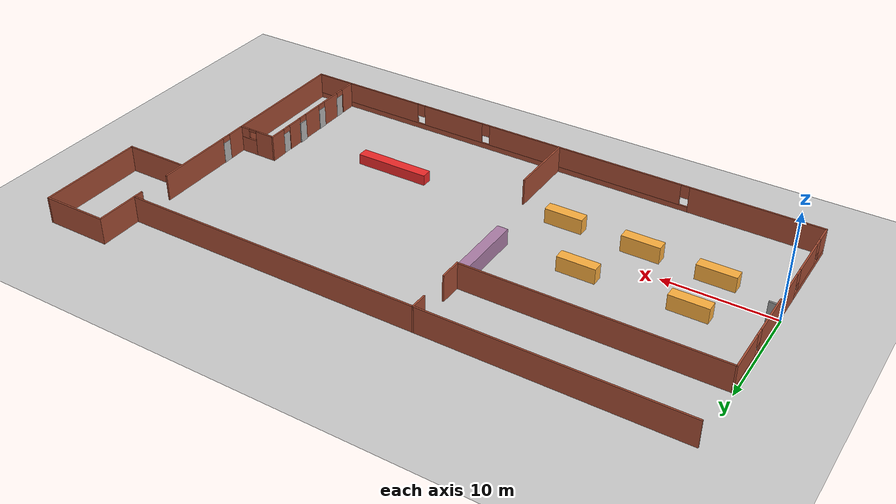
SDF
<sdf version="1.7">
 <world name="default">
  <light name="sun" type="directional">
   <pose>0 0 10 0 -0 0</pose>
   <diffuse>0.8 0.8 0.8 1</diffuse>
   <specular>0.2 0.2 0.2 1</specular>
   <attenuation>
    <range>1000</range>
    <constant>0.9</constant>
    <linear>0.01</linear>
    <quadratic>0.001</quadratic>
   </attenuation>
   <direction>-0.5 0.1 -0.9</direction>
   <spot><inner_angle>0</inner_angle><outer_angle>0</outer_angle><falloff>0</falloff></spot>
  </light>
  <model name="ground_plane">
   <static>1</static>
   <link name="link">
    <collision name="collision">
     <geometry><plane><normal>0 0 1</normal><size>100 100</size></plane></geometry>
     <surface>
      <contact><collide_bitmask>65535</collide_bitmask></contact>
      <friction><ode><mu>100</mu><mu2>50</mu2></ode></friction>
     </surface>
    </collision>
    <visual name="visual">
     <cast_shadows>0</cast_shadows>
     <geometry><plane><normal>0 0 1</normal><size>100 100</size></plane></geometry>
     <material>
      <script><uri>file://media/materials/scripts/gazebo.material</uri><name>Gazebo/Grey</name></script>
     </material>
    </visual>
   </link>
  </model>
  <gravity>0 0 -9.8</gravity>
  <magnetic_field>6e-06 2.3e-05 -4.2e-05</magnetic_field>
  <atmosphere type="adiabatic"/>
  <physics type="ode">
   <max_step_size>0.001</max_step_size>
   <real_time_factor>1</real_time_factor>
   <real_time_update_rate>1000</real_time_update_rate>
  </physics>
  <scene><ambient>0.4 0.4 0.4 1</ambient><background>0.7 0.7 0.7 1</background><shadows>1</shadows></scene>
  <spherical_coordinates>
   <surface_model>EARTH_WGS84</surface_model>
   <latitude_deg>0</latitude_deg>
   <longitude_deg>0</longitude_deg>
   <elevation>0</elevation>
   <heading_deg>0</heading_deg>
  </spherical_coordinates>
  <model name="world">
   <pose>28.6416 4.93004 0 0 -0 0</pose>
   <link name="Door_6">
    <collision name="Door_6_Collision">
     <geometry><box><size>0.9 0.17 2</size></box></geometry>
     <pose>0 0 1 0 -0 0</pose>
    </collision>
    <visual name="Door_6_Visual">
     <pose>0 0 1 0 -0 0</pose>
     <geometry><box><size>0.9 0.17 2</size></box></geometry>
     <material>
      <script><uri>file://media/materials/scripts/gazebo.material</uri><name>Gazebo/Grey</name></script>
     </material>
    </visual>
    <pose>-28.0935 -4.22704 0 0 -0 0</pose>
   </link>
   <link name="Wall_11">
    <pose>-28.5 0.25 0 0 -0 1.5708</pose>
    <visual name="Wall_11_Visual_0">
     <pose>-2.44406 0 1.25 0 -0 0</pose>
     <geometry><box><size>4.26189 0.15 2.5</size></box></geometry>
     <material>
      <script><uri>file://media/materials/scripts/gazebo.material</uri><name>Gazebo/Bricks</name></script>
      <ambient>1 1 1 1</ambient>
     </material>
     <meta><layer>0</layer></meta>
    </visual>
    <collision name="Wall_11_Collision_0">
     <geometry><box><size>4.26189 0.15 2.5</size></box></geometry>
     <pose>-2.44406 0 1.25 0 -0 0</pose>
    </collision>
    <visual name="Wall_11_Visual_1">
     <pose>2.13095 0 0.25 0 -0 0</pose>
     <geometry><box><size>4.88811 0.15 0.5</size></box></geometry>
     <material>
      <script><uri>file://media/materials/scripts/gazebo.material</uri><name>Gazebo/Bricks</name></script>
      <ambient>1 1 1 1</ambient>
     </material>
     <meta><layer>0</layer></meta>
    </visual>
    <collision name="Wall_11_Collision_1">
     <geometry><box><size>4.88811 0.15 0.5</size></box></geometry>
     <pose>2.13095 0 0.25 0 -0 0</pose>
    </collision>
    <visual name="Wall_11_Visual_2">
     <pose>2.53095 0 1.5 0 -0 0</pose>
     <geometry><box><size>4.08811 0.15 2</size></box></geometry>
     <material>
      <script><uri>file://media/materials/scripts/gazebo.material</uri><name>Gazebo/Bricks</name></script>
      <ambient>1 1 1 1</ambient>
     </material>
     <meta><layer>0</layer></meta>
    </visual>
    <collision name="Wall_11_Collision_2">
     <geometry><box><size>4.08811 0.15 2</size></box></geometry>
     <pose>2.53095 0 1.5 0 -0 0</pose>
    </collision>
    <visual name="Wall_11_Visual_3">
     <pose>0.086889 0 1.9 0 -0 0</pose>
     <geometry><box><size>0.8 0.15 1.2</size></box></geometry>
     <material>
      <script><uri>file://media/materials/scripts/gazebo.material</uri><name>Gazebo/Bricks</name></script>
      <ambient>1 1 1 1</ambient>
     </material>
     <meta><layer>0</layer></meta>
    </visual>
    <collision name="Wall_11_Collision_3">
     <geometry><box><size>0.8 0.15 1.2</size></box></geometry>
     <pose>0.086889 0 1.9 0 -0 0</pose>
    </collision>
   </link>
   <link name="Wall_13">
    <pose>-3 -15.25 0 0 -0 0</pose>
    <visual name="Wall_13_Visual_0">
     <pose>-19.6123 0 1.25 0 -0 0</pose>
     <geometry><box><size>11.9253 0.15 2.5</size></box></geometry>
     <material>
      <script><uri>file://media/materials/scripts/gazebo.material</uri><name>Gazebo/Bricks</name></script>
      <ambient>1 1 1 1</ambient>
     </material>
     <meta><layer>0</layer></meta>
    </visual>
    <collision name="Wall_13_Collision_0">
     <geometry><box><size>11.9253 0.15 2.5</size></box></geometry>
     <pose>-19.6123 0 1.25 0 -0 0</pose>
    </collision>
    <visual name="Wall_13_Visual_1">
     <pose>5.96266 0 0.25 0 -0 0</pose>
     <geometry><box><size>39.2247 0.15 0.5</size></box></geometry>
     <material>
      <script><uri>file://media/materials/scripts/gazebo.material</uri><name>Gazebo/Bricks</name></script>
      <ambient>1 1 1 1</ambient>
     </material>
     <meta><layer>0</layer></meta>
    </visual>
    <collision name="Wall_13_Collision_1">
     <geometry><box><size>39.2247 0.15 0.5</size></box></geometry>
     <pose>5.96266 0 0.25 0 -0 0</pose>
    </collision>
    <visual name="Wall_13_Visual_2">
     <pose>-3.36472 0 1.5 0 -0 0</pose>
     <geometry><box><size>18.9699 0.15 2</size></box></geometry>
     <material>
      <script><uri>file://media/materials/scripts/gazebo.material</uri><name>Gazebo/Bricks</name></script>
      <ambient>1 1 1 1</ambient>
     </material>
     <meta><layer>0</layer></meta>
    </visual>
    <collision name="Wall_13_Collision_2">
     <geometry><box><size>18.9699 0.15 2</size></box></geometry>
     <pose>-3.36472 0 1.5 0 -0 0</pose>
    </collision>
    <visual name="Wall_13_Visual_3">
     <pose>10.0719 0 1.5 0 -0 0</pose>
     <geometry><box><size>6.30326 0.15 2</size></box></geometry>
     <material>
      <script><uri>file://media/materials/scripts/gazebo.material</uri><name>Gazebo/Bricks</name></script>
      <ambient>1 1 1 1</ambient>
     </material>
     <meta><layer>0</layer></meta>
    </visual>
    <collision name="Wall_13_Collision_3">
     <geometry><box><size>6.30326 0.15 2</size></box></geometry>
     <pose>10.0719 0 1.5 0 -0 0</pose>
    </collision>
    <visual name="Wall_13_Visual_4">
     <pose>19.7993 0 1.5 0 -0 0</pose>
     <geometry><box><size>11.5515 0.15 2</size></box></geometry>
     <material>
      <script><uri>file://media/materials/scripts/gazebo.material</uri><name>Gazebo/Bricks</name></script>
      <ambient>1 1 1 1</ambient>
     </material>
     <meta><layer>0</layer></meta>
    </visual>
    <collision name="Wall_13_Collision_4">
     <geometry><box><size>11.5515 0.15 2</size></box></geometry>
     <pose>19.7993 0 1.5 0 -0 0</pose>
    </collision>
    <visual name="Wall_13_Visual_5">
     <pose>-13.2497 0 1.9 0 -0 0</pose>
     <geometry><box><size>0.8 0.15 1.2</size></box></geometry>
     <material>
      <script><uri>file://media/materials/scripts/gazebo.material</uri><name>Gazebo/Bricks</name></script>
      <ambient>1 1 1 1</ambient>
     </material>
     <meta><layer>0</layer></meta>
    </visual>
    <collision name="Wall_13_Collision_5">
     <geometry><box><size>0.8 0.15 1.2</size></box></geometry>
     <pose>-13.2497 0 1.9 0 -0 0</pose>
    </collision>
    <visual name="Wall_13_Visual_6">
     <pose>6.52025 0 1.9 0 -0 0</pose>
     <geometry><box><size>0.8 0.15 1.2</size></box></geometry>
     <material>
      <script><uri>file://media/materials/scripts/gazebo.material</uri><name>Gazebo/Bricks</name></script>
      <ambient>1 1 1 1</ambient>
     </material>
     <meta><layer>0</layer></meta>
    </visual>
    <collision name="Wall_13_Collision_6">
     <geometry><box><size>0.8 0.15 1.2</size></box></geometry>
     <pose>6.52025 0 1.9 0 -0 0</pose>
    </collision>
    <visual name="Wall_13_Visual_7">
     <pose>13.6235 0 1.9 0 -0 0</pose>
     <geometry><box><size>0.8 0.15 1.2</size></box></geometry>
     <material>
      <script><uri>file://media/materials/scripts/gazebo.material</uri><name>Gazebo/Bricks</name></script>
      <ambient>1 1 1 1</ambient>
     </material>
     <meta><layer>0</layer></meta>
    </visual>
    <collision name="Wall_13_Collision_7">
     <geometry><box><size>0.8 0.15 1.2</size></box></geometry>
     <pose>13.6235 0 1.9 0 -0 0</pose>
    </collision>
   </link>
   <link name="Wall_15">
    <collision name="Wall_15_Collision">
     <geometry><box><size>6.669 0.15 2.5</size></box></geometry>
     <pose>0 0 1.25 0 -0 0</pose>
    </collision>
    <visual name="Wall_15_Visual">
     <pose>0 0 1.25 0 -0 0</pose>
     <geometry><box><size>6.669 0.15 2.5</size></box></geometry>
     <material>
      <script><uri>file://media/materials/scripts/gazebo.material</uri><name>Gazebo/Bricks</name></script>
      <ambient>1 1 1 1</ambient>
     </material>
     <meta><layer>0</layer></meta>
    </visual>
    <pose>-4.087 -11.9905 0 0 -0 1.5708</pose>
   </link>
   <link name="Wall_17">
    <collision name="Wall_17_Collision">
     <geometry><box><size>23.15 0.15 2.5</size></box></geometry>
     <pose>0 0 1.25 0 -0 0</pose>
    </collision>
    <visual name="Wall_17_Visual">
     <pose>0 0 1.25 0 -0 0</pose>
     <geometry><box><size>23.15 0.15 2.5</size></box></geometry>
     <material>
      <script><uri>file://media/materials/scripts/gazebo.material</uri><name>Gazebo/Bricks</name></script>
      <ambient>1 1 1 1</ambient>
     </material>
     <meta><layer>0</layer></meta>
    </visual>
    <pose>-17 4.75 0 0 -0 0</pose>
   </link>
   <link name="Wall_19">
    <collision name="Wall_19_Collision">
     <geometry><box><size>2.15 0.15 2.5</size></box></geometry>
     <pose>0 0 1.25 0 -0 0</pose>
    </collision>
    <visual name="Wall_19_Visual">
     <pose>0 0 1.25 0 -0 0</pose>
     <geometry><box><size>2.15 0.15 2.5</size></box></geometry>
     <material>
      <script><uri>file://media/materials/scripts/gazebo.material</uri><name>Gazebo/Bricks</name></script>
      <ambient>1 1 1 1</ambient>
     </material>
     <meta><layer>0</layer></meta>
    </visual>
    <pose>-5.5 5.75 0 0 -0 1.5708</pose>
   </link>
   <link name="Wall_21">
    <collision name="Wall_21_Collision">
     <geometry><box><size>1.65 0.15 2.5</size></box></geometry>
     <pose>0 0 1.25 0 -0 0</pose>
    </collision>
    <visual name="Wall_21_Visual">
     <pose>0 0 1.25 0 -0 0</pose>
     <geometry><box><size>1.65 0.15 2.5</size></box></geometry>
     <material>
      <script><uri>file://media/materials/scripts/gazebo.material</uri><name>Gazebo/Bricks</name></script>
      <ambient>1 1 1 1</ambient>
     </material>
     <meta><layer>0</layer></meta>
    </visual>
    <pose>-5.6 10.5 0 0 -0 1.5708</pose>
   </link>
   <link name="Wall_23">
    <collision name="Wall_23_Collision">
     <geometry><box><size>51.15 0.15 2.5</size></box></geometry>
     <pose>0 0 1.25 0 -0 0</pose>
    </collision>
    <visual name="Wall_23_Visual">
     <pose>0 0 1.25 0 -0 0</pose>
     <geometry><box><size>51.15 0.15 2.5</size></box></geometry>
     <material>
      <script><uri>file://media/materials/scripts/gazebo.material</uri><name>Gazebo/Bricks</name></script>
      <ambient>1 1 1 1</ambient>
     </material>
     <meta><layer>0</layer></meta>
    </visual>
    <pose>-3 11.25 0 0 -0 0</pose>
   </link>
   <link name="Wall_27">
    <collision name="Wall_27_Collision">
     <geometry><box><size>1 0.15 2.5</size></box></geometry>
     <pose>0 0 1.25 0 -0 0</pose>
    </collision>
    <visual name="Wall_27_Visual">
     <pose>0 0 1.25 0 -0 0</pose>
     <geometry><box><size>1 0.15 2.5</size></box></geometry>
     <material>
      <script><uri>file://media/materials/scripts/gazebo.material</uri><name>Gazebo/Bricks</name></script>
      <ambient>1 1 1 1</ambient>
     </material>
     <meta><layer>0</layer></meta>
    </visual>
    <pose>22.5 10.825 0 0 -0 -1.5708</pose>
   </link>
   <link name="Wall_30">
    <pose>22.5 -4 0 0 -0 1.5708</pose>
    <visual name="Wall_30_Visual_0">
     <pose>-4.20993 0 1.25 0 -0 0</pose>
     <geometry><box><size>14.2301 0.15 2.5</size></box></geometry>
     <material>
      <script><uri>file://media/materials/scripts/gazebo.material</uri><name>Gazebo/Bricks</name></script>
      <ambient>1 1 1 1</ambient>
     </material>
     <meta><layer>0</layer></meta>
    </visual>
    <collision name="Wall_30_Collision_0">
     <geometry><box><size>14.2301 0.15 2.5</size></box></geometry>
     <pose>-4.20993 0 1.25 0 -0 0</pose>
    </collision>
    <visual name="Wall_30_Visual_1">
     <pose>7.56507 0 1.25 0 -0 0</pose>
     <geometry><box><size>7.51987 0.15 2.5</size></box></geometry>
     <material>
      <script><uri>file://media/materials/scripts/gazebo.material</uri><name>Gazebo/Bricks</name></script>
      <ambient>1 1 1 1</ambient>
     </material>
     <meta><layer>0</layer></meta>
    </visual>
    <collision name="Wall_30_Collision_1">
     <geometry><box><size>7.51987 0.15 2.5</size></box></geometry>
     <pose>7.56507 0 1.25 0 -0 0</pose>
    </collision>
    <visual name="Wall_30_Visual_2">
     <pose>3.35513 0 2.25 0 -0 0</pose>
     <geometry><box><size>0.9 0.15 0.5</size></box></geometry>
     <material>
      <script><uri>file://media/materials/scripts/gazebo.material</uri><name>Gazebo/Bricks</name></script>
      <ambient>1 1 1 1</ambient>
     </material>
     <meta><layer>0</layer></meta>
    </visual>
    <collision name="Wall_30_Collision_2">
     <geometry><box><size>0.9 0.15 0.5</size></box></geometry>
     <pose>3.35513 0 2.25 0 -0 0</pose>
    </collision>
   </link>
   <link name="Wall_32">
    <pose>18.8713 -9.07136 0 0 -0 1.5708</pose>
    <visual name="Wall_32_Visual_0">
     <pose>-5.43516 0 1.25 0 -0 0</pose>
     <geometry><box><size>1.62968 0.15 2.5</size></box></geometry>
     <material>
      <script><uri>file://media/materials/scripts/gazebo.material</uri><name>Gazebo/Bricks</name></script>
      <ambient>1 1 1 1</ambient>
     </material>
     <meta><layer>0</layer></meta>
    </visual>
    <collision name="Wall_32_Collision_0">
     <geometry><box><size>1.62968 0.15 2.5</size></box></geometry>
     <pose>-5.43516 0 1.25 0 -0 0</pose>
    </collision>
    <visual name="Wall_32_Visual_1">
     <pose>-2.70115 0 1.25 0 -0 0</pose>
     <geometry><box><size>2.03833 0.15 2.5</size></box></geometry>
     <material>
      <script><uri>file://media/materials/scripts/gazebo.material</uri><name>Gazebo/Bricks</name></script>
      <ambient>1 1 1 1</ambient>
     </material>
     <meta><layer>0</layer></meta>
    </visual>
    <collision name="Wall_32_Collision_1">
     <geometry><box><size>2.03833 0.15 2.5</size></box></geometry>
     <pose>-2.70115 0 1.25 0 -0 0</pose>
    </collision>
    <visual name="Wall_32_Visual_2">
     <pose>0.237176 0 1.25 0 -0 0</pose>
     <geometry><box><size>2.03833 0.15 2.5</size></box></geometry>
     <material>
      <script><uri>file://media/materials/scripts/gazebo.material</uri><name>Gazebo/Bricks</name></script>
      <ambient>1 1 1 1</ambient>
     </material>
     <meta><layer>0</layer></meta>
    </visual>
    <collision name="Wall_32_Collision_2">
     <geometry><box><size>2.03833 0.15 2.5</size></box></geometry>
     <pose>0.237176 0 1.25 0 -0 0</pose>
    </collision>
    <visual name="Wall_32_Visual_3">
     <pose>2.93065 0 1.25 0 -0 0</pose>
     <geometry><box><size>1.54861 0.15 2.5</size></box></geometry>
     <material>
      <script><uri>file://media/materials/scripts/gazebo.material</uri><name>Gazebo/Bricks</name></script>
      <ambient>1 1 1 1</ambient>
     </material>
     <meta><layer>0</layer></meta>
    </visual>
    <collision name="Wall_32_Collision_3">
     <geometry><box><size>1.54861 0.15 2.5</size></box></geometry>
     <pose>2.93065 0 1.25 0 -0 0</pose>
    </collision>
    <visual name="Wall_32_Visual_4">
     <pose>5.42748 0 1.25 0 -0 0</pose>
     <geometry><box><size>1.64505 0.15 2.5</size></box></geometry>
     <material>
      <script><uri>file://media/materials/scripts/gazebo.material</uri><name>Gazebo/Bricks</name></script>
      <ambient>1 1 1 1</ambient>
     </material>
     <meta><layer>0</layer></meta>
    </visual>
    <collision name="Wall_32_Collision_4">
     <geometry><box><size>1.64505 0.15 2.5</size></box></geometry>
     <pose>5.42748 0 1.25 0 -0 0</pose>
    </collision>
    <visual name="Wall_32_Visual_5">
     <pose>-4.17032 0 2.25 0 -0 0</pose>
     <geometry><box><size>0.9 0.15 0.5</size></box></geometry>
     <material>
      <script><uri>file://media/materials/scripts/gazebo.material</uri><name>Gazebo/Bricks</name></script>
      <ambient>1 1 1 1</ambient>
     </material>
     <meta><layer>0</layer></meta>
    </visual>
    <collision name="Wall_32_Collision_5">
     <geometry><box><size>0.9 0.15 0.5</size></box></geometry>
     <pose>-4.17032 0 2.25 0 -0 0</pose>
    </collision>
    <visual name="Wall_32_Visual_6">
     <pose>-1.23199 0 2.25 0 -0 0</pose>
     <geometry><box><size>0.9 0.15 0.5</size></box></geometry>
     <material>
      <script><uri>file://media/materials/scripts/gazebo.material</uri><name>Gazebo/Bricks</name></script>
      <ambient>1 1 1 1</ambient>
     </material>
     <meta><layer>0</layer></meta>
    </visual>
    <collision name="Wall_32_Collision_6">
     <geometry><box><size>0.9 0.15 0.5</size></box></geometry>
     <pose>-1.23199 0 2.25 0 -0 0</pose>
    </collision>
    <visual name="Wall_32_Visual_7">
     <pose>1.70634 0 2.25 0 -0 0</pose>
     <geometry><box><size>0.9 0.15 0.5</size></box></geometry>
     <material>
      <script><uri>file://media/materials/scripts/gazebo.material</uri><name>Gazebo/Bricks</name></script>
      <ambient>1 1 1 1</ambient>
     </material>
     <meta><layer>0</layer></meta>
    </visual>
    <collision name="Wall_32_Collision_7">
     <geometry><box><size>0.9 0.15 0.5</size></box></geometry>
     <pose>1.70634 0 2.25 0 -0 0</pose>
    </collision>
    <visual name="Wall_32_Visual_8">
     <pose>4.15495 0 2.25 0 -0 0</pose>
     <geometry><box><size>0.9 0.15 0.5</size></box></geometry>
     <material>
      <script><uri>file://media/materials/scripts/gazebo.material</uri><name>Gazebo/Bricks</name></script>
      <ambient>1 1 1 1</ambient>
     </material>
     <meta><layer>0</layer></meta>
    </visual>
    <collision name="Wall_32_Collision_8">
     <geometry><box><size>0.9 0.15 0.5</size></box></geometry>
     <pose>4.15495 0 2.25 0 -0 0</pose>
    </collision>
   </link>
   <link name="Wall_33">
    <pose>20.6713 -2.89636 0 0 -0 0</pose>
    <visual name="Wall_33_Visual_0">
     <pose>-0.885398 0 1.25 0 -0 0</pose>
     <geometry><box><size>1.9792 0.15 2.5</size></box></geometry>
     <material>
      <script><uri>file://media/materials/scripts/gazebo.material</uri><name>Gazebo/Bricks</name></script>
      <ambient>1 1 1 1</ambient>
     </material>
     <meta><layer>0</layer></meta>
    </visual>
    <collision name="Wall_33_Collision_0">
     <geometry><box><size>1.9792 0.15 2.5</size></box></geometry>
     <pose>-0.885398 0 1.25 0 -0 0</pose>
    </collision>
    <visual name="Wall_33_Visual_1">
     <pose>0.989602 0 0.75 0 -0 0</pose>
     <geometry><box><size>1.7708 0.15 1.5</size></box></geometry>
     <material>
      <script><uri>file://media/materials/scripts/gazebo.material</uri><name>Gazebo/Bricks</name></script>
      <ambient>1 1 1 1</ambient>
     </material>
     <meta><layer>0</layer></meta>
    </visual>
    <collision name="Wall_33_Collision_1">
     <geometry><box><size>1.7708 0.15 1.5</size></box></geometry>
     <pose>0.989602 0 0.75 0 -0 0</pose>
    </collision>
    <visual name="Wall_33_Visual_2">
     <pose>1.3896 0 2 0 -0 0</pose>
     <geometry><box><size>0.970796 0.15 1</size></box></geometry>
     <material>
      <script><uri>file://media/materials/scripts/gazebo.material</uri><name>Gazebo/Bricks</name></script>
      <ambient>1 1 1 1</ambient>
     </material>
     <meta><layer>0</layer></meta>
    </visual>
    <collision name="Wall_33_Collision_2">
     <geometry><box><size>0.970796 0.15 1</size></box></geometry>
     <pose>1.3896 0 2 0 -0 0</pose>
    </collision>
    <visual name="Wall_33_Visual_3">
     <pose>0.504204 0 2.4 0 -0 0</pose>
     <geometry><box><size>0.8 0.15 0.2</size></box></geometry>
     <material>
      <script><uri>file://media/materials/scripts/gazebo.material</uri><name>Gazebo/Bricks</name></script>
      <ambient>1 1 1 1</ambient>
     </material>
     <meta><layer>0</layer></meta>
    </visual>
    <collision name="Wall_33_Collision_3">
     <geometry><box><size>0.8 0.15 0.2</size></box></geometry>
     <pose>0.504204 0 2.4 0 -0 0</pose>
    </collision>
   </link>
   <link name="Wall_35">
    <collision name="Wall_35_Collision">
     <geometry><box><size>6.15 0.15 2.5</size></box></geometry>
     <pose>0 0 1.25 0 -0 0</pose>
    </collision>
    <visual name="Wall_35_Visual">
     <pose>0 0 1.25 0 -0 0</pose>
     <geometry><box><size>6.15 0.15 2.5</size></box></geometry>
     <material>
      <script><uri>file://media/materials/scripts/gazebo.material</uri><name>Gazebo/Bricks</name></script>
      <ambient>1 1 1 1</ambient>
     </material>
     <meta><layer>0</layer></meta>
    </visual>
    <pose>25.5 5.25 0 0 -0 0</pose>
   </link>
   <link name="Wall_36">
    <collision name="Wall_36_Collision">
     <geometry><box><size>10.15 0.15 2.5</size></box></geometry>
     <pose>0 0 1.25 0 -0 0</pose>
    </collision>
    <visual name="Wall_36_Visual">
     <pose>0 0 1.25 0 -0 0</pose>
     <geometry><box><size>10.15 0.15 2.5</size></box></geometry>
     <material>
      <script><uri>file://media/materials/scripts/gazebo.material</uri><name>Gazebo/Bricks</name></script>
      <ambient>1 1 1 1</ambient>
     </material>
     <meta><layer>0</layer></meta>
    </visual>
    <pose>28.5 10.25 0 0 -0 1.5708</pose>
   </link>
   <link name="Wall_40">
    <collision name="Wall_40_Collision">
     <geometry><box><size>6.15 0.15 2.5</size></box></geometry>
     <pose>0 0 1.25 0 -0 0</pose>
    </collision>
    <visual name="Wall_40_Visual">
     <pose>0 0 1.25 0 -0 0</pose>
     <geometry><box><size>6.15 0.15 2.5</size></box></geometry>
     <material>
      <script><uri>file://media/materials/scripts/gazebo.material</uri><name>Gazebo/Bricks</name></script>
      <ambient>1 1 1 1</ambient>
     </material>
     <meta><layer>0</layer></meta>
    </visual>
    <pose>25.5 15.25 0 0 -0 3.14159</pose>
   </link>
   <link name="Wall_42">
    <collision name="Wall_42_Collision">
     <geometry><box><size>4.15 0.15 2.5</size></box></geometry>
     <pose>0 0 1.25 0 -0 0</pose>
    </collision>
    <visual name="Wall_42_Visual">
     <pose>0 0 1.25 0 -0 0</pose>
     <geometry><box><size>4.15 0.15 2.5</size></box></geometry>
     <material>
      <script><uri>file://media/materials/scripts/gazebo.material</uri><name>Gazebo/Bricks</name></script>
      <ambient>1 1 1 1</ambient>
     </material>
     <meta><layer>0</layer></meta>
    </visual>
    <pose>22.5 13.25 0 0 -0 1.5708</pose>
   </link>
   <link name="Wall_9">
    <pose>-28.5 -10.5 0 0 -0 -1.5708</pose>
    <visual name="Wall_9_Visual_0">
     <pose>-3.68312 0 1.25 0 -0 0</pose>
     <geometry><box><size>2.28376 0.15 2.5</size></box></geometry>
     <material>
      <script><uri>file://media/materials/scripts/gazebo.material</uri><name>Gazebo/Bricks</name></script>
      <ambient>1 1 1 1</ambient>
     </material>
     <meta><layer>0</layer></meta>
    </visual>
    <collision name="Wall_9_Collision_0">
     <geometry><box><size>2.28376 0.15 2.5</size></box></geometry>
     <pose>-3.68312 0 1.25 0 -0 0</pose>
    </collision>
    <visual name="Wall_9_Visual_1">
     <pose>1.14188 0 0.25 0 -0 0</pose>
     <geometry><box><size>7.36624 0.15 0.5</size></box></geometry>
     <material>
      <script><uri>file://media/materials/scripts/gazebo.material</uri><name>Gazebo/Bricks</name></script>
      <ambient>1 1 1 1</ambient>
     </material>
     <meta><layer>0</layer></meta>
    </visual>
    <collision name="Wall_9_Collision_1">
     <geometry><box><size>7.36624 0.15 0.5</size></box></geometry>
     <pose>1.14188 0 0.25 0 -0 0</pose>
    </collision>
    <visual name="Wall_9_Visual_2">
     <pose>0.25163 0 1.5 0 -0 0</pose>
     <geometry><box><size>3.98573 0.15 2</size></box></geometry>
     <material>
      <script><uri>file://media/materials/scripts/gazebo.material</uri><name>Gazebo/Bricks</name></script>
      <ambient>1 1 1 1</ambient>
     </material>
     <meta><layer>0</layer></meta>
    </visual>
    <collision name="Wall_9_Collision_2">
     <geometry><box><size>3.98573 0.15 2</size></box></geometry>
     <pose>0.25163 0 1.5 0 -0 0</pose>
    </collision>
    <visual name="Wall_9_Visual_3">
     <pose>3.93475 0 1.5 0 -0 0</pose>
     <geometry><box><size>1.7805 0.15 2</size></box></geometry>
     <material>
      <script><uri>file://media/materials/scripts/gazebo.material</uri><name>Gazebo/Bricks</name></script>
      <ambient>1 1 1 1</ambient>
     </material>
     <meta><layer>0</layer></meta>
    </visual>
    <collision name="Wall_9_Collision_3">
     <geometry><box><size>1.7805 0.15 2</size></box></geometry>
     <pose>3.93475 0 1.5 0 -0 0</pose>
    </collision>
    <visual name="Wall_9_Visual_4">
     <pose>-2.14124 0 1.9 0 -0 0</pose>
     <geometry><box><size>0.8 0.15 1.2</size></box></geometry>
     <material>
      <script><uri>file://media/materials/scripts/gazebo.material</uri><name>Gazebo/Bricks</name></script>
      <ambient>1 1 1 1</ambient>
     </material>
     <meta><layer>0</layer></meta>
    </visual>
    <collision name="Wall_9_Collision_4">
     <geometry><box><size>0.8 0.15 1.2</size></box></geometry>
     <pose>-2.14124 0 1.9 0 -0 0</pose>
    </collision>
    <visual name="Wall_9_Visual_5">
     <pose>2.6445 0 1.9 0 -0 0</pose>
     <geometry><box><size>0.8 0.15 1.2</size></box></geometry>
     <material>
      <script><uri>file://media/materials/scripts/gazebo.material</uri><name>Gazebo/Bricks</name></script>
      <ambient>1 1 1 1</ambient>
     </material>
     <meta><layer>0</layer></meta>
    </visual>
    <collision name="Wall_9_Collision_5">
     <geometry><box><size>0.8 0.15 1.2</size></box></geometry>
     <pose>2.6445 0 1.9 0 -0 0</pose>
    </collision>
   </link>
   <static>1</static>
  </model>
  <model name="door">
   <link name="link_0">
    <visual name="visual">
     <pose>0 0 1 0 -0 0</pose>
     <geometry><box><size>0.9 0.15 2</size></box></geometry>
     <material>
      <script>
       <uri>model://door/materials/scripts</uri>
       <uri>model://door/materials/textures</uri>
       <name>door</name>
      </script>
     </material>
    </visual>
    <collision name="collision">
     <pose>0 0 1 0 -0 0</pose>
     <geometry><box><size>0.9 0.15 2</size></box></geometry>
    </collision>
   </link>
   <static>1</static>
   <pose>47.5584 0.000399 0 0 0 -1.56062</pose>
  </model>
  <model name="door_clone">
   <link name="link_0">
    <visual name="visual">
     <pose>0 0 1 0 -0 0</pose>
     <geometry><box><size>0.9 0.15 2</size></box></geometry>
     <material>
      <script>
       <uri>model://door/materials/scripts</uri>
       <uri>model://door/materials/textures</uri>
       <name>door</name>
      </script>
     </material>
    </visual>
    <collision name="collision">
     <pose>0 0 1 0 -0 0</pose>
     <geometry><box><size>0.9 0.15 2</size></box></geometry>
    </collision>
   </link>
   <static>1</static>
   <pose>47.4348 -2.38 0 0 0 -1.56062</pose>
  </model>
  <model name="door_clone_0">
   <link name="link_0">
    <visual name="visual">
     <pose>0 0 1 0 -0 0</pose>
     <geometry><box><size>0.9 0.15 2</size></box></geometry>
     <material>
      <script>
       <uri>model://door/materials/scripts</uri>
       <uri>model://door/materials/textures</uri>
       <name>door</name>
      </script>
     </material>
    </visual>
    <collision name="collision">
     <pose>0 0 1 0 -0 0</pose>
     <geometry><box><size>0.9 0.15 2</size></box></geometry>
    </collision>
   </link>
   <static>1</static>
   <pose>47.4872 -5.39353 0 0 0 -1.56062</pose>
  </model>
  <model name="door_clone_1">
   <link name="link_0">
    <visual name="visual">
     <pose>0 0 1 0 -0 0</pose>
     <geometry><box><size>0.9 0.15 2</size></box></geometry>
     <material>
      <script>
       <uri>model://door/materials/scripts</uri>
       <uri>model://door/materials/textures</uri>
       <name>door</name>
      </script>
     </material>
    </visual>
    <collision name="collision">
     <pose>0 0 1 0 -0 0</pose>
     <geometry><box><size>0.9 0.15 2</size></box></geometry>
    </collision>
   </link>
   <static>1</static>
   <pose>47.5069 -8.2157 0 0 0 -1.56062</pose>
  </model>
  <model name="door_clone_2">
   <link name="link_0">
    <visual name="visual">
     <pose>0 0 1 0 -0 0</pose>
     <geometry><box><size>0.9 0.15 2</size></box></geometry>
     <material>
      <script>
       <uri>model://door/materials/scripts</uri>
       <uri>model://door/materials/textures</uri>
       <name>door</name>
      </script>
     </material>
    </visual>
    <collision name="collision">
     <pose>0 0 1 0 -0 0</pose>
     <geometry><box><size>0.9 0.15 2</size></box></geometry>
    </collision>
   </link>
   <static>1</static>
   <pose>51.1335 4.28925 0 0 0 -1.56062</pose>
  </model>
  <model name="unit_box">
   <link name="link">
    <inertial>
     <mass>1</mass>
     <inertia>
      <ixx>0.166667</ixx>
      <ixy>0</ixy>
      <ixz>0</ixz>
      <iyy>0.166667</iyy>
      <iyz>0</iyz>
      <izz>0.166667</izz>
     </inertia>
    </inertial>
    <visual name="visual">
     <geometry><box><size>1 7 2</size></box></geometry>
     <material>
      <script><name>Gazebo/Grey</name><uri>file://media/materials/scripts/gazebo.material</uri></script>
      <shader type="pixel"><normal_map>__default__</normal_map></shader>
      <ambient>0.678 0.498 0.659 1</ambient>
      <diffuse>0.7 0.7 0.7 1</diffuse>
      <specular>0.01 0.01 0.01 1</specular>
      <emissive>0 0 0 1</emissive>
     </material>
    </visual>
    <collision name="collision">
     <geometry><box><size>1 1 1</size></box></geometry>
     <surface>
      <friction>
       <ode><mu>1</mu><mu2>1</mu2><fdir1>0 0 0</fdir1><slip1>0</slip1><slip2>0</slip2></ode>
       <torsional>
        <coefficient>1</coefficient>
        <patch_radius>0</patch_radius>
        <surface_radius>0</surface_radius>
        <use_patch_radius>1</use_patch_radius>
        <ode><slip>0</slip></ode>
       </torsional>
      </friction>
      <bounce><restitution_coefficient>0</restitution_coefficient><threshold>1e+06</threshold></bounce>
      <contact>
       <collide_without_contact>0</collide_without_contact>
       <collide_without_contact_bitmask>1</collide_without_contact_bitmask>
       <collide_bitmask>1</collide_bitmask>
       <ode>
        <soft_cfm>0</soft_cfm>
        <soft_erp>0.2</soft_erp>
        <kp>1e+13</kp>
        <kd>1</kd>
        <max_vel>0.01</max_vel>
        <min_depth>0</min_depth>
       </ode>
       <bullet>
        <split_impulse>1</split_impulse>
        <split_impulse_penetration_threshold>-0.01</split_impulse_penetration_threshold>
        <soft_cfm>0</soft_cfm>
        <soft_erp>0.2</soft_erp>
        <kp>1e+13</kp>
        <kd>1</kd>
       </bullet>
      </contact>
     </surface>
    </collision>
   </link>
   <static>0</static>
   <pose>23.2381 5.74237 0.5 0 -0 0</pose>
  </model>
  <model name="unit_box_0">
   <link name="link">
    <inertial>
     <mass>1</mass>
     <inertia>
      <ixx>0.166667</ixx>
      <ixy>0</ixy>
      <ixz>0</ixz>
      <iyy>0.166667</iyy>
      <iyz>0</iyz>
      <izz>0.166667</izz>
     </inertia>
    </inertial>
    <pose>0.388866 0.522854 0 0 -0 0</pose>
    <visual name="visual">
     <geometry><box><size>7 1 1</size></box></geometry>
     <material>
      <script><name>Gazebo/Grey</name><uri>file://media/materials/scripts/gazebo.material</uri></script>
      <shader type="pixel"><normal_map>__default__</normal_map></shader>
      <ambient>0.937 0.161 0.161 1</ambient>
      <diffuse>0.7 0.7 0.7 1</diffuse>
      <specular>0.01 0.01 0.01 1</specular>
      <emissive>0 0 0 1</emissive>
     </material>
    </visual>
    <collision name="collision">
     <geometry><box><size>1 1 1</size></box></geometry>
     <surface>
      <friction>
       <ode><mu>1</mu><mu2>1</mu2><fdir1>0 0 0</fdir1><slip1>0</slip1><slip2>0</slip2></ode>
       <torsional>
        <coefficient>1</coefficient>
        <patch_radius>0</patch_radius>
        <surface_radius>0</surface_radius>
        <use_patch_radius>1</use_patch_radius>
        <ode><slip>0</slip></ode>
       </torsional>
      </friction>
      <bounce><restitution_coefficient>0</restitution_coefficient><threshold>1e+06</threshold></bounce>
      <contact>
       <collide_without_contact>0</collide_without_contact>
       <collide_without_contact_bitmask>1</collide_without_contact_bitmask>
       <collide_bitmask>1</collide_bitmask>
       <ode>
        <soft_cfm>0</soft_cfm>
        <soft_erp>0.2</soft_erp>
        <kp>1e+13</kp>
        <kd>1</kd>
        <max_vel>0.01</max_vel>
        <min_depth>0</min_depth>
       </ode>
       <bullet>
        <split_impulse>1</split_impulse>
        <split_impulse_penetration_threshold>-0.01</split_impulse_penetration_threshold>
        <soft_cfm>0</soft_cfm>
        <soft_erp>0.2</soft_erp>
        <kp>1e+13</kp>
        <kd>1</kd>
       </bullet>
      </contact>
     </surface>
    </collision>
   </link>
   <static>0</static>
   <pose>36.622 -2.71748 0.5 0 -0 0</pose>
  </model>
  <model name="unit_box_2">
   <link name="link">
    <inertial>
     <mass>1</mass>
     <inertia>
      <ixx>0.166667</ixx>
      <ixy>0</ixy>
      <ixz>0</ixz>
      <iyy>0.166667</iyy>
      <iyz>0</iyz>
      <izz>0.166667</izz>
     </inertia>
    </inertial>
    <visual name="visual">
     <geometry><box><size>3.5 1 1.75</size></box></geometry>
     <material>
      <script><name>Gazebo/Grey</name><uri>file://media/materials/scripts/gazebo.material</uri></script>
      <shader type="pixel"><normal_map>__default__</normal_map></shader>
      <ambient>0.988 0.686 0.243 1</ambient>
      <diffuse>0.7 0.7 0.7 1</diffuse>
      <specular>0.01 0.01 0.01 1</specular>
      <emissive>0 0 0 1</emissive>
     </material>
    </visual>
    <collision name="collision">
     <geometry><box><size>1 1 1</size></box></geometry>
     <surface>
      <friction>
       <ode><mu>1</mu><mu2>1</mu2><fdir1>0 0 0</fdir1><slip1>0</slip1><slip2>0</slip2></ode>
       <torsional>
        <coefficient>1</coefficient>
        <patch_radius>0</patch_radius>
        <surface_radius>0</surface_radius>
        <use_patch_radius>1</use_patch_radius>
        <ode><slip>0</slip></ode>
       </torsional>
      </friction>
      <bounce><restitution_coefficient>0</restitution_coefficient><threshold>1e+06</threshold></bounce>
      <contact>
       <collide_without_contact>0</collide_without_contact>
       <collide_without_contact_bitmask>1</collide_without_contact_bitmask>
       <collide_bitmask>1</collide_bitmask>
       <ode>
        <soft_cfm>0</soft_cfm>
        <soft_erp>0.2</soft_erp>
        <kp>1e+13</kp>
        <kd>1</kd>
        <max_vel>0.01</max_vel>
        <min_depth>0</min_depth>
       </ode>
       <bullet>
        <split_impulse>1</split_impulse>
        <split_impulse_penetration_threshold>-0.01</split_impulse_penetration_threshold>
        <soft_cfm>0</soft_cfm>
        <soft_erp>0.2</soft_erp>
        <kp>1e+13</kp>
        <kd>1</kd>
       </bullet>
      </contact>
     </surface>
    </collision>
   </link>
   <static>0</static>
   <pose>6.32634 2.76668 0.5 0 -0 0</pose>
  </model>
  <model name="unit_box_2_clone">
   <link name="link">
    <inertial>
     <mass>1</mass>
     <inertia>
      <ixx>0.166667</ixx>
      <ixy>0</ixy>
      <ixz>0</ixz>
      <iyy>0.166667</iyy>
      <iyz>0</iyz>
      <izz>0.166667</izz>
     </inertia>
    </inertial>
    <visual name="visual">
     <geometry><box><size>3.5 1 1.75</size></box></geometry>
     <material>
      <script><name>Gazebo/Grey</name><uri>file://media/materials/scripts/gazebo.material</uri></script>
      <shader type="pixel"><normal_map>__default__</normal_map></shader>
      <ambient>0.988 0.686 0.243 1</ambient>
      <diffuse>0.7 0.7 0.7 1</diffuse>
      <specular>0.01 0.01 0.01 1</specular>
      <emissive>0 0 0 1</emissive>
     </material>
    </visual>
    <collision name="collision">
     <geometry><box><size>1 1 1</size></box></geometry>
     <surface>
      <friction>
       <ode><mu>1</mu><mu2>1</mu2><fdir1>0 0 0</fdir1><slip1>0</slip1><slip2>0</slip2></ode>
       <torsional>
        <coefficient>1</coefficient>
        <patch_radius>0</patch_radius>
        <surface_radius>0</surface_radius>
        <use_patch_radius>1</use_patch_radius>
        <ode><slip>0</slip></ode>
       </torsional>
      </friction>
      <bounce><restitution_coefficient>0</restitution_coefficient><threshold>1e+06</threshold></bounce>
      <contact>
       <collide_without_contact>0</collide_without_contact>
       <collide_without_contact_bitmask>1</collide_without_contact_bitmask>
       <collide_bitmask>1</collide_bitmask>
       <ode>
        <soft_cfm>0</soft_cfm>
        <soft_erp>0.2</soft_erp>
        <kp>1e+13</kp>
        <kd>1</kd>
        <max_vel>0.01</max_vel>
        <min_depth>0</min_depth>
       </ode>
       <bullet>
        <split_impulse>1</split_impulse>
        <split_impulse_penetration_threshold>-0.01</split_impulse_penetration_threshold>
        <soft_cfm>0</soft_cfm>
        <soft_erp>0.2</soft_erp>
        <kp>1e+13</kp>
        <kd>1</kd>
       </bullet>
      </contact>
     </surface>
    </collision>
   </link>
   <static>0</static>
   <pose>15.9058 2.86015 0.5 0 -0 0</pose>
  </model>
  <model name="unit_box_2_clone_0">
   <link name="link">
    <inertial>
     <mass>1</mass>
     <inertia>
      <ixx>0.166667</ixx>
      <ixy>0</ixy>
      <ixz>0</ixz>
      <iyy>0.166667</iyy>
      <iyz>0</iyz>
      <izz>0.166667</izz>
     </inertia>
    </inertial>
    <visual name="visual">
     <geometry><box><size>3.5 1 1.75</size></box></geometry>
     <material>
      <script><name>Gazebo/Grey</name><uri>file://media/materials/scripts/gazebo.material</uri></script>
      <shader type="pixel"><normal_map>__default__</normal_map></shader>
      <ambient>0.988 0.686 0.243 1</ambient>
      <diffuse>0.7 0.7 0.7 1</diffuse>
      <specular>0.01 0.01 0.01 1</specular>
      <emissive>0 0 0 1</emissive>
     </material>
    </visual>
    <collision name="collision">
     <geometry><box><size>1 1 1</size></box></geometry>
     <surface>
      <friction>
       <ode><mu>1</mu><mu2>1</mu2><fdir1>0 0 0</fdir1><slip1>0</slip1><slip2>0</slip2></ode>
       <torsional>
        <coefficient>1</coefficient>
        <patch_radius>0</patch_radius>
        <surface_radius>0</surface_radius>
        <use_patch_radius>1</use_patch_radius>
        <ode><slip>0</slip></ode>
       </torsional>
      </friction>
      <bounce><restitution_coefficient>0</restitution_coefficient><threshold>1e+06</threshold></bounce>
      <contact>
       <collide_without_contact>0</collide_without_contact>
       <collide_without_contact_bitmask>1</collide_without_contact_bitmask>
       <collide_bitmask>1</collide_bitmask>
       <ode>
        <soft_cfm>0</soft_cfm>
        <soft_erp>0.2</soft_erp>
        <kp>1e+13</kp>
        <kd>1</kd>
        <max_vel>0.01</max_vel>
        <min_depth>0</min_depth>
       </ode>
       <bullet>
        <split_impulse>1</split_impulse>
        <split_impulse_penetration_threshold>-0.01</split_impulse_penetration_threshold>
        <soft_cfm>0</soft_cfm>
        <soft_erp>0.2</soft_erp>
        <kp>1e+13</kp>
        <kd>1</kd>
       </bullet>
      </contact>
     </surface>
    </collision>
   </link>
   <static>0</static>
   <pose>6.00481 -2.10568 0.5 0 -0 0</pose>
  </model>
  <model name="unit_box_2_clone_1">
   <link name="link">
    <inertial>
     <mass>1</mass>
     <inertia>
      <ixx>0.166667</ixx>
      <ixy>0</ixy>
      <ixz>0</ixz>
      <iyy>0.166667</iyy>
      <iyz>0</iyz>
      <izz>0.166667</izz>
     </inertia>
    </inertial>
    <visual name="visual">
     <geometry><box><size>3.5 1 1.75</size></box></geometry>
     <material>
      <script><name>Gazebo/Grey</name><uri>file://media/materials/scripts/gazebo.material</uri></script>
      <shader type="pixel"><normal_map>__default__</normal_map></shader>
      <ambient>0.988 0.686 0.243 1</ambient>
      <diffuse>0.7 0.7 0.7 1</diffuse>
      <specular>0.01 0.01 0.01 1</specular>
      <emissive>0 0 0 1</emissive>
     </material>
    </visual>
    <collision name="collision">
     <geometry><box><size>1 1 1</size></box></geometry>
     <surface>
      <friction>
       <ode><mu>1</mu><mu2>1</mu2><fdir1>0 0 0</fdir1><slip1>0</slip1><slip2>0</slip2></ode>
       <torsional>
        <coefficient>1</coefficient>
        <patch_radius>0</patch_radius>
        <surface_radius>0</surface_radius>
        <use_patch_radius>1</use_patch_radius>
        <ode><slip>0</slip></ode>
       </torsional>
      </friction>
      <bounce><restitution_coefficient>0</restitution_coefficient><threshold>1e+06</threshold></bounce>
      <contact>
       <collide_without_contact>0</collide_without_contact>
       <collide_without_contact_bitmask>1</collide_without_contact_bitmask>
       <collide_bitmask>1</collide_bitmask>
       <ode>
        <soft_cfm>0</soft_cfm>
        <soft_erp>0.2</soft_erp>
        <kp>1e+13</kp>
        <kd>1</kd>
        <max_vel>0.01</max_vel>
        <min_depth>0</min_depth>
       </ode>
       <bullet>
        <split_impulse>1</split_impulse>
        <split_impulse_penetration_threshold>-0.01</split_impulse_penetration_threshold>
        <soft_cfm>0</soft_cfm>
        <soft_erp>0.2</soft_erp>
        <kp>1e+13</kp>
        <kd>1</kd>
       </bullet>
      </contact>
     </surface>
    </collision>
   </link>
   <static>0</static>
   <pose>19.9569 -2.82081 0.5 0 -0 0</pose>
  </model>
  <model name="unit_box_1">
   <link name="link">
    <inertial>
     <mass>1</mass>
     <inertia>
      <ixx>0.166667</ixx>
      <ixy>0</ixy>
      <ixz>0</ixz>
      <iyy>0.166667</iyy>
      <iyz>0</iyz>
      <izz>0.166667</izz>
     </inertia>
    </inertial>
    <visual name="visual">
     <geometry><box><size>3.5 1 2</size></box></geometry>
     <material>
      <script><name>Gazebo/Grey</name><uri>file://media/materials/scripts/gazebo.material</uri></script>
      <shader type="pixel"><normal_map>__default__</normal_map></shader>
      <ambient>0.988 0.686 0.243 1</ambient>
      <diffuse>0.7 0.7 0.7 1</diffuse>
      <specular>0.01 0.01 0.01 1</specular>
      <emissive>0 0 0 1</emissive>
     </material>
    </visual>
    <collision name="collision">
     <geometry><box><size>1 1 1</size></box></geometry>
     <surface>
      <friction>
       <ode><mu>1</mu><mu2>1</mu2><fdir1>0 0 0</fdir1><slip1>0</slip1><slip2>0</slip2></ode>
       <torsional>
        <coefficient>1</coefficient>
        <patch_radius>0</patch_radius>
        <surface_radius>0</surface_radius>
        <use_patch_radius>1</use_patch_radius>
        <ode><slip>0</slip></ode>
       </torsional>
      </friction>
      <bounce><restitution_coefficient>0</restitution_coefficient><threshold>1e+06</threshold></bounce>
      <contact>
       <collide_without_contact>0</collide_without_contact>
       <collide_without_contact_bitmask>1</collide_without_contact_bitmask>
       <collide_bitmask>1</collide_bitmask>
       <ode>
        <soft_cfm>0</soft_cfm>
        <soft_erp>0.2</soft_erp>
        <kp>1e+13</kp>
        <kd>1</kd>
        <max_vel>0.01</max_vel>
        <min_depth>0</min_depth>
       </ode>
       <bullet>
        <split_impulse>1</split_impulse>
        <split_impulse_penetration_threshold>-0.01</split_impulse_penetration_threshold>
        <soft_cfm>0</soft_cfm>
        <soft_erp>0.2</soft_erp>
        <kp>1e+13</kp>
        <kd>1</kd>
       </bullet>
      </contact>
     </surface>
    </collision>
   </link>
   <static>0</static>
   <pose>12.7012 -2.43723 0.5 0 -0 0</pose>
  </model>
 </world>
</sdf>
